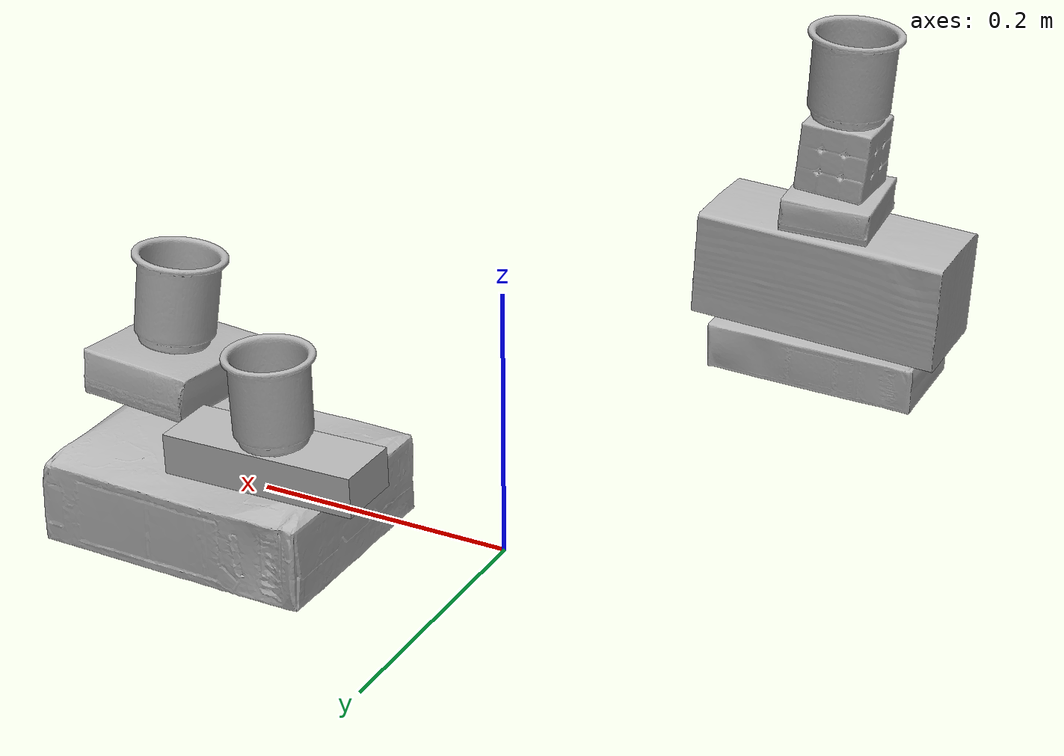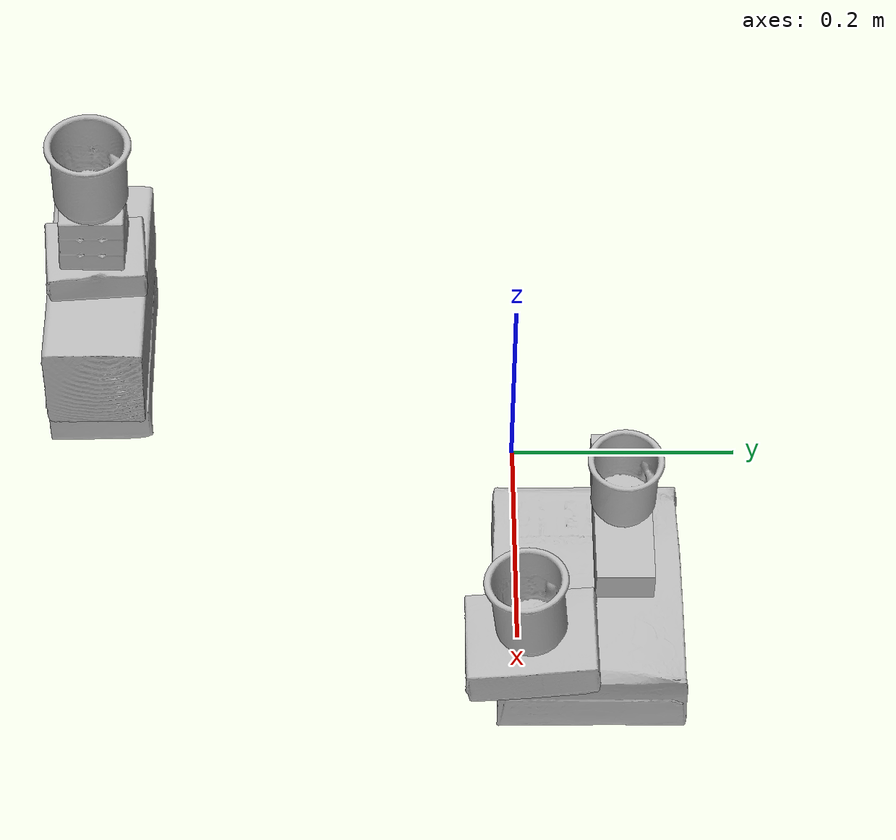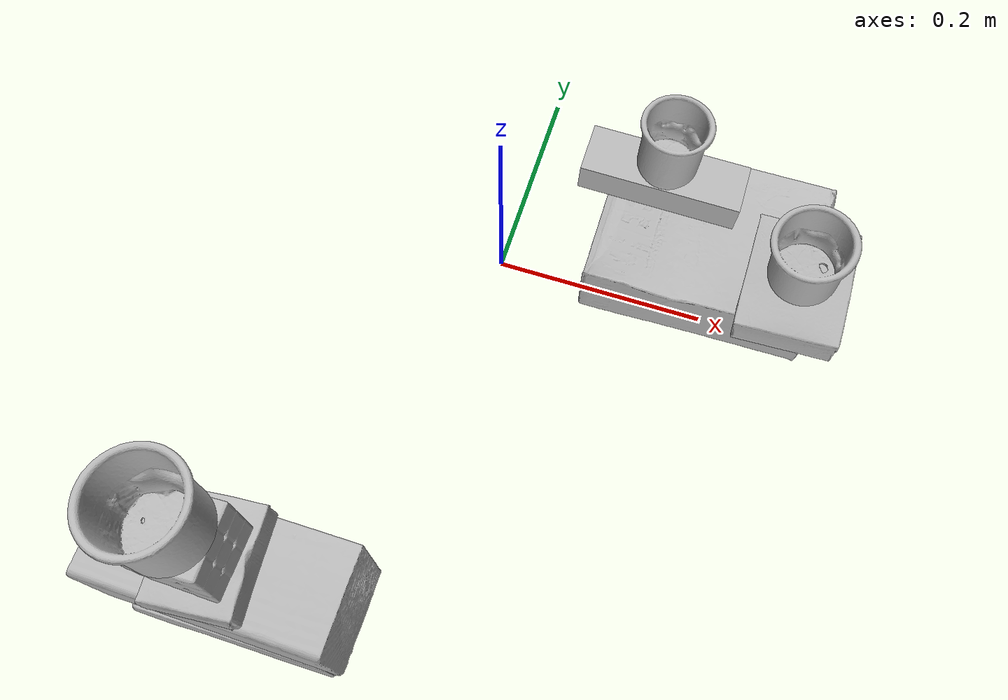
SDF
<?xml version="1.0" ?>
<sdf version="1.4">

  <world name="default">

    <light name="light1" type="point">

      <pose>0 0 1 0 0 0</pose>

      <diffuse>3 3 3 1</diffuse>

      <specular>3 3 3 1</specular>

    </light>

    <light name="light2" type="point">

      <pose>0 0.5 2 0 0 0</pose>

      <diffuse>1 1 1 1</diffuse>

      <specular>1 1 1 1</specular>

    </light>

    <light name="light3" type="point">

      <pose>0 0.5 2 0 0 0</pose>

      <diffuse>3 3 3 1</diffuse>

      <specular>3 3 3 1</specular>

    </light>

    <scene>

      <ambient>0.7 0.7 0.7</ambient>

    </scene>

    <model name="box21">

      <link name="link_box21">

        <collision name="default">

          <geometry>

            <mesh>

              <uri>model://cracker_box/collision_meshes/collision.obj</uri>

              <scale>1.0 1.0 1.0</scale>

            </mesh>

          </geometry>

          <surface>

            <friction>

              <ode>

                <mu>0.5</mu>

                <mu2>0.5</mu2>

              </ode>

            </friction>

          </surface>

        </collision>

        <visual name="default">

          <geometry>

            <mesh>

              <uri>model://cracker_box/visual_meshes/visual.dae</uri>

              <scale>1.0 1.0 1.0</scale>

            </mesh>

          </geometry>

        </visual>

        <inertial>

          <mass>2.732837677001953</mass>

          <pose>0.000946416228543967 0.0002543424488976598 -0.0017029533628374338 -0.00031620734042352985 -0.011106490532052917 0.002546795466230165</pose>

          <inertia>

            <ixx>0.0069511193</ixx>

            <iyy>0.011477663</iyy>

            <izz>0.01637968</izz>

            <ixy>0</ixy>

            <ixz>0</ixz>

            <iyz>0</iyz>

          </inertia>

        </inertial>

      </link>

      <pose>0.1898297667503357 0.06050954759120941 0.03650379925966263 -0.008363680638611561 -0.005227109458743802 0.0005052702629136269</pose>

    </model>

    <model name="box22">

      <link name="link_box22">

        <collision name="default">

          <geometry>

            <mesh>

              <uri>model://jenga/collision_meshes/collision.obj</uri>

              <scale>1.0 1.0 1.0</scale>

            </mesh>

          </geometry>

          <surface>

            <friction>

              <ode>

                <mu>0.5</mu>

                <mu2>0.5</mu2>

              </ode>

            </friction>

          </surface>

        </collision>

        <visual name="default">

          <geometry>

            <mesh>

              <uri>model://jenga/visual_meshes/visual.dae</uri>

              <scale>1.0 1.0 1.0</scale>

            </mesh>

          </geometry>

        </visual>

        <inertial>

          <mass>0.1563216596841812</mass>

          <pose>-2.502855807051674e-07 -0.00010250010382151231 -4.0923401684267446e-05 0.0 -7.34215461761844e-07 0.0</pose>

          <inertia>

            <ixx>4.3258e-05</ixx>

            <iyy>0.000293115</iyy>

            <izz>0.0003129252</izz>

            <ixy>0</ixy>

            <ixz>0</ixz>

            <iyz>0</iyz>

          </inertia>

        </inertial>

      </link>

      <pose>0.13011538982391357 0.09051303565502167 0.08458352833986282 -0.006654414257398123 0.01805277510655517 -0.001855124687470202</pose>

    </model>

    <model name="box23">

      <link name="link_box23">

        <collision name="default">

          <geometry>

            <mesh>

              <uri>model://pudding_box/collision_meshes/collision.obj</uri>

              <scale>1.0 1.0 1.0</scale>

            </mesh>

          </geometry>

          <surface>

            <friction>

              <ode>

                <mu>0.5</mu>

                <mu2>0.5</mu2>

              </ode>

            </friction>

          </surface>

        </collision>

        <visual name="default">

          <geometry>

            <mesh>

              <uri>model://pudding_box/visual_meshes/visual.dae</uri>

              <scale>1.0 1.0 1.0</scale>

            </mesh>

          </geometry>

        </visual>

        <inertial>

          <mass>0.32993465662002563</mass>

          <pose>0.0004894821904599667 0.0008067885064519942 -0.0005188827635720372 0.005213102236317791 -0.0066038015122011 0.020079823288174207</pose>

          <inertia>

            <ixx>0.00037297411</ixx>

            <iyy>0.00025093966</iyy>

            <izz>0.0005507938</izz>

            <ixy>0</ixy>

            <ixz>0</ixz>

            <iyz>0</iyz>

          </inertia>

        </inertial>

      </link>

      <pose>0.26818186044692993 0.008920728228986263 0.09214582294225693 0.08452658571777585 -0.05994584052443522 -0.00015286289550360736</pose>

    </model>

    <model name="cup1">

      <link name="link_cup1">

        <collision name="default">

          <geometry>

            <mesh>

              <uri>model://c_cups/collision_meshes/collision.obj</uri>

              <scale>1.0 1.0 1.0</scale>

            </mesh>

          </geometry>

          <surface>

            <friction>

              <ode>

                <mu>0.5</mu>

                <mu2>0.5</mu2>

              </ode>

            </friction>

          </surface>

        </collision>

        <visual name="default">

          <geometry>

            <mesh>

              <uri>model://c_cups/visual_meshes/visual.dae</uri>

              <scale>1.0 1.0 1.0</scale>

            </mesh>

          </geometry>

        </visual>

        <inertial>

          <mass>0.05159630998969078</mass>

          <pose>0.0007237254758365452 0.0020153908990323544 -0.001275097718462348 0.3021575981944983 0.01346171900925468 -0.08771841488334552</pose>

          <inertia>

            <ixx>3.8371487e-05</ixx>

            <iyy>3.7693397e-05</iyy>

            <izz>3.3934528e-05</izz>

            <ixy>0</ixy>

            <ixz>0</ixz>

            <iyz>0</iyz>

          </inertia>

        </inertial>

      </link>

      <pose>0.13070741295814514 0.09037357568740845 0.1330416053533554 -0.00657179126244854 0.01808531803145646 0.0008026804950071578</pose>

    </model>

    <model name="cup2">

      <link name="link_cup2">

        <collision name="default">

          <geometry>

            <mesh>

              <uri>model://d_cups/collision_meshes/collision.obj</uri>

              <scale>1.0 1.0 1.0</scale>

            </mesh>

          </geometry>

          <surface>

            <friction>

              <ode>

                <mu>0.5</mu>

                <mu2>0.5</mu2>

              </ode>

            </friction>

          </surface>

        </collision>

        <visual name="default">

          <geometry>

            <mesh>

              <uri>model://d_cups/visual_meshes/visual.dae</uri>

              <scale>1.0 1.0 1.0</scale>

            </mesh>

          </geometry>

        </visual>

        <inertial>

          <mass>0.029099034145474434</mass>

          <pose>0.0008068051538430154 0.0019117402844130993 -0.0022666510194540024 0.24013101341738077 -0.2470893725106806 0.5942204262094062</pose>

          <inertia>

            <ixx>2.436274e-05</ixx>

            <iyy>2.429223e-05</iyy>

            <izz>2.2052422e-05</izz>

            <ixy>0</ixy>

            <ixz>0</ixz>

            <iyz>0</iyz>

          </inertia>

        </inertial>

      </link>

      <pose>0.2656208872795105 0.005655856803059578 0.1450600028038025 0.09833070885572555 -0.08682374827924863 -0.00346390450394728</pose>

    </model>

    <model name="box11">

      <link name="link_box11">

        <collision name="default">

          <geometry>

            <mesh>

              <uri>model://sugar_box/collision_meshes/collision.obj</uri>

              <scale>1.0 1.0 1.0</scale>

            </mesh>

          </geometry>

          <surface>

            <friction>

              <ode>

                <mu>0.5</mu>

                <mu2>0.5</mu2>

              </ode>

            </friction>

          </surface>

        </collision>

        <visual name="default">

          <geometry>

            <mesh>

              <uri>model://sugar_box/visual_meshes/visual.dae</uri>

              <scale>1.0 1.0 1.0</scale>

            </mesh>

          </geometry>

        </visual>

        <inertial>

          <mass>0.6083751916885376</mass>

          <pose>0.0010343727190047503 3.849109634757042e-05 -0.00036364805418998003 -0.00040462662026216373 0.00105066363904409 0.002615379021562279</pose>

          <inertia>

            <ixx>0.0005068966</ixx>

            <iyy>0.0016383935</iyy>

            <izz>0.0019613528</izz>

            <ixy>0</ixy>

            <ixz>0</ixz>

            <iyz>0</iyz>

          </inertia>

        </inertial>

      </link>

      <pose>-0.10090912878513336 -0.3702968955039978 0.022799668833613396 0.0004435066189284457 -0.023312690732225978 0.0006943276462326305</pose>

    </model>

    <model name="box12">

      <link name="link_box12">

        <collision name="default">

          <geometry>

            <mesh>

              <uri>model://wood_block/collision_meshes/collision.obj</uri>

              <scale>1.0 1.0 1.0</scale>

            </mesh>

          </geometry>

          <surface>

            <friction>

              <ode>

                <mu>0.5</mu>

                <mu2>0.5</mu2>

              </ode>

            </friction>

          </surface>

        </collision>

        <visual name="default">

          <geometry>

            <mesh>

              <uri>model://wood_block/visual_meshes/visual.dae</uri>

              <scale>1.0 1.0 1.0</scale>

            </mesh>

          </geometry>

        </visual>

        <inertial>

          <mass>1.904224157333374</mass>

          <pose>-5.813315510749817e-06 -0.000570809468626976 0.0002640858292579651 -0.05220878944738684 -0.005192694452018099 -0.006861378422653873</pose>

          <inertia>

            <ixx>0.00254814</ixx>

            <iyy>0.008049577</iyy>

            <izz>0.008019466</izz>

            <ixy>0</ixy>

            <ixz>0</ixz>

            <iyz>0</iyz>

          </inertia>

        </inertial>

      </link>

      <pose>-0.10267303884029388 -0.3688088655471802 0.09024529904127121 -0.007275633203746138 -0.04072719814133732 -0.003052719322722349</pose>

    </model>

    <model name="box13">

      <link name="link_box13">

        <collision name="default">

          <geometry>

            <mesh>

              <uri>model://gelatin_box/collision_meshes/collision.obj</uri>

              <scale>1.0 1.0 1.0</scale>

            </mesh>

          </geometry>

          <surface>

            <friction>

              <ode>

                <mu>0.5</mu>

                <mu2>0.5</mu2>

              </ode>

            </friction>

          </surface>

        </collision>

        <visual name="default">

          <geometry>

            <mesh>

              <uri>model://gelatin_box/visual_meshes/visual.dae</uri>

              <scale>1.0 1.0 1.0</scale>

            </mesh>

          </geometry>

        </visual>

        <inertial>

          <mass>0.15982484817504883</mass>

          <pose>0.0004319618456065655 0.00011156871187267825 -0.0003640321083366871 -0.001050372093012012 -0.00475581868936722 0.016440559471878533</pose>

          <inertia>

            <ixx>0.000112823305</ixx>

            <iyy>8.0589096e-05</iyy>

            <izz>0.0001717422</izz>

            <ixy>0</ixy>

            <ixz>0</ixz>

            <iyz>0</iyz>

          </inertia>

        </inertial>

      </link>

      <pose>-0.10419697314500809 -0.36952751874923706 0.15102171897888184 -0.005870400865423136 -0.053188051400820925 0.07886083311577786</pose>

    </model>

    <model name="box14">

      <link name="link_box14">

        <collision name="default">

          <geometry>

            <mesh>

              <uri>model://rubiks_cube/collision_meshes/collision.obj</uri>

              <scale>1.0 1.0 1.0</scale>

            </mesh>

          </geometry>

          <surface>

            <friction>

              <ode>

                <mu>0.5</mu>

                <mu2>0.5</mu2>

              </ode>

            </friction>

          </surface>

        </collision>

        <visual name="default">

          <geometry>

            <mesh>

              <uri>model://rubiks_cube/visual_meshes/visual.dae</uri>

              <scale>1.0 1.0 1.0</scale>

            </mesh>

          </geometry>

        </visual>

        <inertial>

          <mass>0.19606205821037292</mass>

          <pose>2.6721043468569405e-05 5.256967051536776e-05 -7.264316536748083e-06 -0.05467227514375443 -0.09814085307594407 -0.03445353526761094</pose>

          <inertia>

            <ixx>0.00010833746</ixx>

            <iyy>0.000107832224</iyy>

            <izz>0.00010923522</izz>

            <ixy>0</ixy>

            <ixz>0</ixz>

            <iyz>0</iyz>

          </inertia>

        </inertial>

      </link>

      <pose>-0.10637855529785156 -0.3693412244319916 0.1942441612482071 -0.016960548657191276 -0.07992704601120437 0.022271602814145076</pose>

    </model>

    <model name="cup15">

      <link name="link_cup15">

        <collision name="default">

          <geometry>

            <mesh>

              <uri>model://e_cups/collision_meshes/collision.obj</uri>

              <scale>1.0 1.0 1.0</scale>

            </mesh>

          </geometry>

          <surface>

            <friction>

              <ode>

                <mu>0.5</mu>

                <mu2>0.5</mu2>

              </ode>

            </friction>

          </surface>

        </collision>

        <visual name="default">

          <geometry>

            <mesh>

              <uri>model://e_cups/visual_meshes/visual.dae</uri>

              <scale>1.0 1.0 1.0</scale>

            </mesh>

          </geometry>

        </visual>

        <inertial>

          <mass>0.09305236488580704</mass>

          <pose>0.0011355740716680884 0.0028797851409763098 -0.003882972989231348 0.6952374393777071 0.08767548394821409 -0.5235242886817723</pose>

          <inertia>

            <ixx>8.204892e-05</ixx>

            <iyy>8.5752865e-05</iyy>

            <izz>7.844823e-05</izz>

            <ixy>0</ixy>

            <ixz>0</ixz>

            <iyz>0</iyz>

          </inertia>

        </inertial>

      </link>

      <pose>-0.11007194966077805 -0.36791473627090454 0.25876182317733765 -0.01575016775219867 -0.06323319012074763 -0.032188744047904005</pose>

    </model>

  </world>

</sdf>
